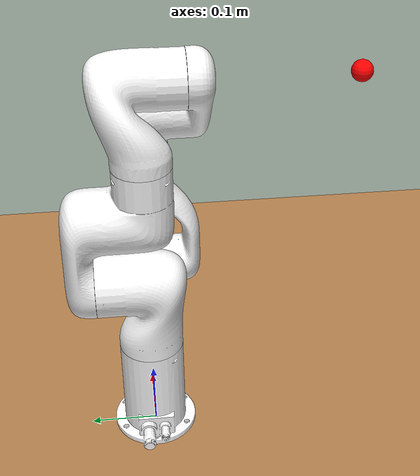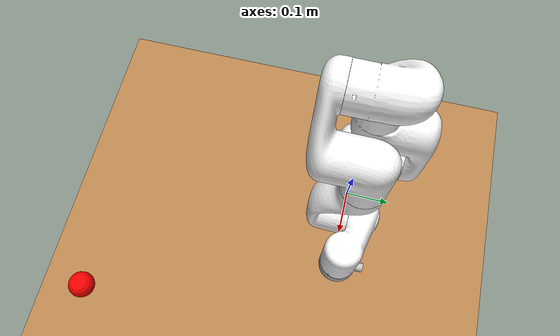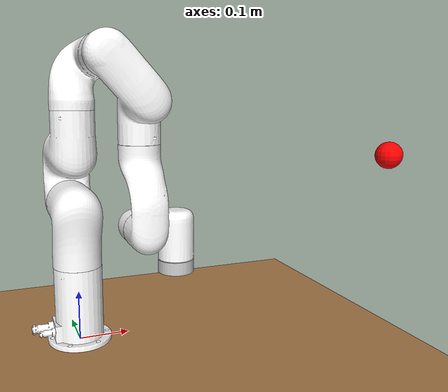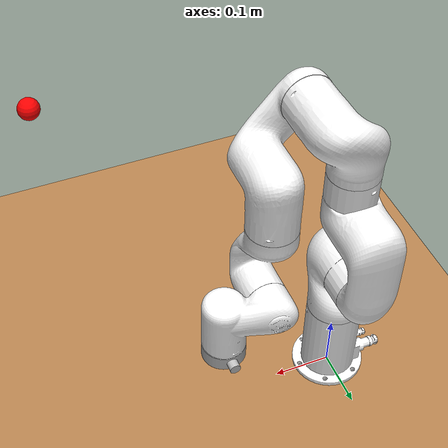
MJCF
<mujoco model="xarm7 nohand">
  <compiler angle="radian" meshdir="assets"/>

  <asset>
    <material name="white" rgba="1 1 1 1"/>
    <material name="gray" rgba="0.753 0.753 0.753 1"/>

    <mesh file="link_base.stl"/>
    <mesh file="link1.stl"/>
    <mesh file="link2.stl"/>
    <mesh file="link3.stl"/>
    <mesh file="link4.stl"/>
    <mesh file="link5.stl"/>
    <mesh file="link6.stl"/>
    <mesh file="link7.stl"/>
    <mesh file="end_tool.stl"/>
    <texture type="2d" name="wood" file="wood1.png"/>
    <material name="wood" texuniform="true" texture="wood" reflectance="0.0"/>

  </asset>

  <default>
    <default class="xarm7">
      <geom type="mesh" material="white"/>
      <joint axis="0 0 1" range="-6.28319 6.28319" frictionloss="1"/>
      <general biastype="affine" ctrlrange="-6.28319 6.28319"/>
      <default class="size1">
        <joint damping="10"/>
        <general gainprm="1500" biasprm="0 -1500 -150" forcerange="-50 50"/>
      </default>
      <default class="size2">
        <joint damping="5"/>
        <general gainprm="1000" biasprm="0 -1000 -100" forcerange="-30 30"/>
      </default>
      <default class="size3">
        <joint damping="2"/>
        <general gainprm="800" biasprm="0 -800 -80" forcerange="-20 20"/>
      </default>
      <site size="0.001" rgba="1 0 0 1" group="4"/>
    </default>
  </default>

  <worldbody>
    <light pos="1 0 1.5" dir="0 0 -1" directional="true"/>
    <light pos="-1 0 1.5" dir="0 0 -1" directional="true"/>
    <body name = "marker" mocap = "true" pos = "0.4 -0.4 0.4" >
      <geom type = "sphere" size = "0.02" rgba= "1 0 0 1" contype = "0" conaffinity = "0"/>
    </body>

    <geom name="floor" size="2.0 1 .1" type="plane" material="wood"/>
    <body name="link_base" pos="0 0 0" childclass="xarm7">
      <inertial pos="-0.021131 -0.0016302 0.056488" quat="0.696843 0.20176 0.10388 0.680376" mass="0.88556"
        diaginertia="0.00382023 0.00335282 0.00167725"/>
      <geom mesh="link_base"/>
      <body name="link1" pos="0 0 0.267">
        <inertial pos="-0.0002 0.02905 -0.01233" quat="0.978953 -0.202769 -0.00441617 -0.0227264" mass="2.382"
          diaginertia="0.00569127 0.00533384 0.00293865"/>
        <joint name="joint1" class="size1"/>
        <geom mesh="link1"/>
        <body name="link2" quat="1 -1 0 0">
          <inertial pos="0.00022 -0.12856 0.01735" quat="0.50198 0.86483 -0.00778841 0.00483285" mass="1.869"
            diaginertia="0.00959898 0.00937717 0.00201315"/>
          <joint name="joint2" range="-2.059 2.0944" class="size1"/>
          <geom mesh="link2"/>
          <body name="link3" pos="0 -0.293 0" quat="1 1 0 0">
            <inertial pos="0.0466 -0.02463 -0.00768" quat="0.913819 0.289775 0.281481 -0.0416455" mass="1.6383"
              diaginertia="0.00351721 0.00294089 0.00195868"/>
            <joint name="joint3" class="size2"/>
            <geom mesh="link3"/>
            <body name="link4" pos="0.0525 0 0" quat="1 1 0 0">
              <inertial pos="0.07047 -0.11575 0.012" quat="0.422108 0.852026 -0.126025 0.282832" mass="1.7269"
                diaginertia="0.00657137 0.00647948 0.00186763"/>
              <joint name="joint4" range="-0.19198 3.927" class="size2"/>
              <geom mesh="link4"/>
              <body name="link5" pos="0.0775 -0.3425 0" quat="1 1 0 0">
                <inertial pos="-0.00032 0.01604 -0.026" quat="0.999311 -0.0304457 0.000577067 0.0212082" mass="1.3203"
                  diaginertia="0.00534729 0.00499076 0.0013489"/>
                <joint name="joint5" class="size2"/>
                <geom mesh="link5"/>
                <body name="link6" quat="1 1 0 0">
                  <inertial pos="0.06469 0.03278 0.02141" quat="-0.217672 0.772419 0.16258 0.574069" mass="1.325"
                    diaginertia="0.00245421 0.00221646 0.00107273"/>
                  <joint name="joint6" range="-1.69297 3.14159" class="size3"/>
                  <geom mesh="link6"/>
                  <body name="link7" pos="0.076 0.097 0" quat="1 -1 0 0">
                    <inertial pos="0 -0.00677 -0.01098" quat="0.487612 0.512088 -0.512088 0.487612" mass="0.17"
                      diaginertia="0.000132176 9.3e-05 5.85236e-05"/>
                    <joint name="joint7" class="size3"/>
                    <geom material="gray" mesh="end_tool"/>
                    <site name="attachment_site"/>
                  </body>
                </body>
              </body>
            </body>
          </body>
        </body>
      </body>
    </body>
  </worldbody>

  <actuator>
    <motor name="act1" joint="joint1" gear="1" forcelimited="true" forcerange="-50 50"/>
    <motor name="act2" joint="joint2" gear="1" forcelimited="true" forcerange="-50 50"/>
    <motor name="act3" joint="joint3" gear="1" forcelimited="true" forcerange="-30 30"/>
    <motor name="act4" joint="joint4" gear="1" forcelimited="true" forcerange="-30 30"/>
    <motor name="act5" joint="joint5" gear="1" forcelimited="true" forcerange="-30 30"/>
    <motor name="act6" joint="joint6" gear="1" forcelimited="true" forcerange="-20 20"/>
    <motor name="act7" joint="joint7" gear="1" forcelimited="true" forcerange="-20 20"/>
  </actuator>

  <keyframe>
    <key name="home" qpos="0 -.247 0 .909 0 1.15644 0" ctrl="0 -.247 0 .909 0 1.15644 0"/>
  </keyframe>
</mujoco>
